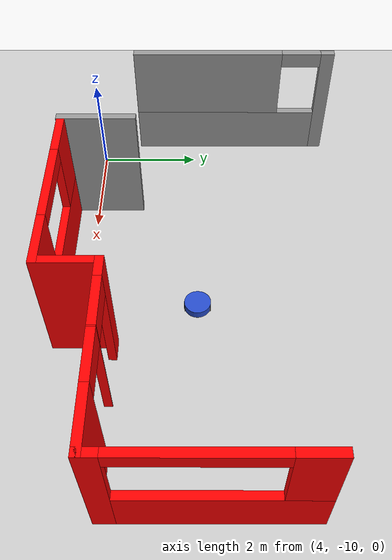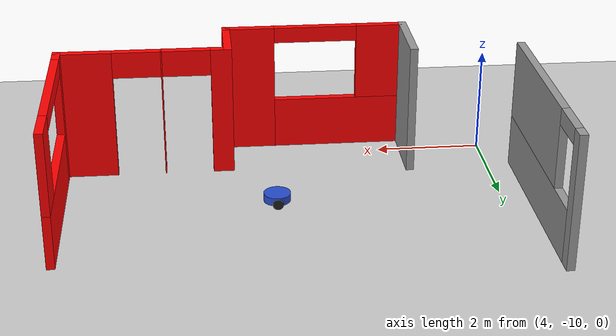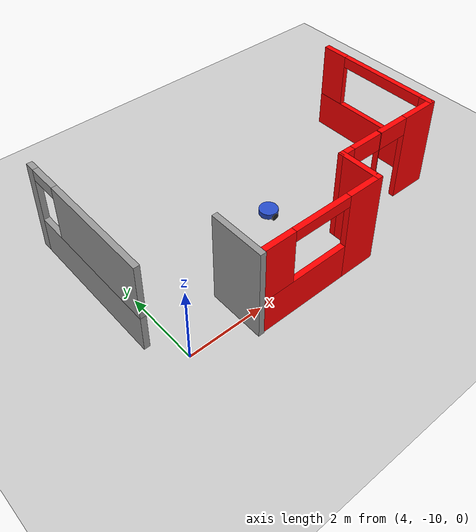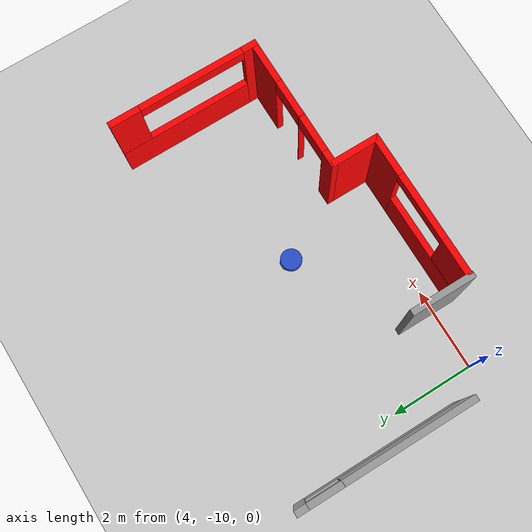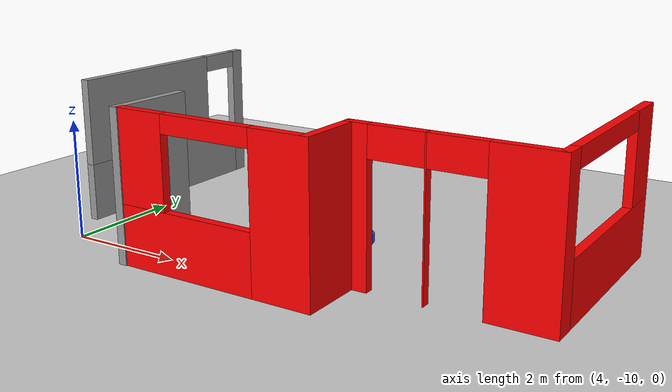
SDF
<sdf version="1.6">
 <world name="default">
  <model name="ground_plane">
   <static>1</static>
   <link name="link">
    <collision name="collision">
     <geometry><plane><normal>0 0 1</normal><size>100 100</size></plane></geometry>
     <surface><friction><ode><mu>100</mu><mu2>50</mu2></ode></friction></surface>
    </collision>
    <visual name="visual">
     <cast_shadows>0</cast_shadows>
     <geometry><plane><normal>0 0 1</normal><size>100 100</size></plane></geometry>
     <material>
      <script><uri>file://media/materials/scripts/gazebo.material</uri><name>Gazebo/Grey</name></script>
     </material>
    </visual>
   </link>
  </model>
  <model name="1floorHouse">
   <link name="Wall_302">
    <pose>-0.789795 -2.54 0 0 0 -1.5708</pose>
    <visual name="Wall_302_Visual_0">
     <pose>-1.93765 0 1.25 0 -0 0</pose>
     <geometry><box><size>0.274706 0.15 2.5</size></box></geometry>
     <material>
      <script><uri>file://media/materials/scripts/gazebo.material</uri><name>Gazebo/Grey</name></script>
      <ambient>1 1 1 1</ambient>
      <diffuse>0.7 0.7 0.7 1</diffuse>
      <specular>0.01 0.01 0.01 1</specular>
      <emissive>0 0 0 1</emissive>
     </material>
    </visual>
    <visual name="Wall_302_Visual_1">
     <pose>0.137353 0 0.5 0 -0 0</pose>
     <geometry><box><size>3.87529 0.15 1</size></box></geometry>
     <material>
      <script><uri>file://media/materials/scripts/gazebo.material</uri><name>Gazebo/Grey</name></script>
      <ambient>1 1 1 1</ambient>
      <diffuse>0.7 0.7 0.7 1</diffuse>
      <specular>0.01 0.01 0.01 1</specular>
      <emissive>0 0 0 1</emissive>
     </material>
    </visual>
    <visual name="Wall_302_Visual_2">
     <pose>0.537353 0 1.75 0 -0 0</pose>
     <geometry><box><size>3.07529 0.15 1.5</size></box></geometry>
     <material>
      <script><uri>file://media/materials/scripts/gazebo.material</uri><name>Gazebo/Grey</name></script>
      <ambient>1 1 1 1</ambient>
      <diffuse>0.7 0.7 0.7 1</diffuse>
      <specular>0.01 0.01 0.01 1</specular>
      <emissive>0 0 0 1</emissive>
     </material>
    </visual>
    <visual name="Wall_302_Visual_3">
     <pose>-1.40029 0 2.35 0 -0 0</pose>
     <geometry><box><size>0.8 0.15 0.3</size></box></geometry>
     <material>
      <script><uri>file://media/materials/scripts/gazebo.material</uri><name>Gazebo/Grey</name></script>
      <ambient>1 1 1 1</ambient>
      <diffuse>0.7 0.7 0.7 1</diffuse>
      <specular>0.01 0.01 0.01 1</specular>
      <emissive>0 0 0 1</emissive>
     </material>
    </visual>
    <collision name="Wall_302_Collision_0">
     <pose>-1.93765 0 1.25 0 -0 0</pose>
     <geometry><box><size>0.274706 0.15 2.5</size></box></geometry>
     <surface>
      <friction>
       <ode><mu>1</mu><mu2>1</mu2><fdir1>0 0 0</fdir1><slip1>0</slip1><slip2>0</slip2></ode>
       <torsional>
        <coefficient>1</coefficient>
        <patch_radius>0</patch_radius>
        <surface_radius>0</surface_radius>
        <use_patch_radius>1</use_patch_radius>
        <ode><slip>0</slip></ode>
       </torsional>
      </friction>
      <bounce><restitution_coefficient>0</restitution_coefficient><threshold>1e+06</threshold></bounce>
      <contact>
       <collide_without_contact>0</collide_without_contact>
       <collide_without_contact_bitmask>1</collide_without_contact_bitmask>
       <collide_bitmask>1</collide_bitmask>
       <ode>
        <soft_cfm>0</soft_cfm>
        <soft_erp>0.2</soft_erp>
        <kp>1e+13</kp>
        <kd>1</kd>
        <max_vel>0.01</max_vel>
        <min_depth>0</min_depth>
       </ode>
       <bullet>
        <split_impulse>1</split_impulse>
        <split_impulse_penetration_threshold>-0.01</split_impulse_penetration_threshold>
        <soft_cfm>0</soft_cfm>
        <soft_erp>0.2</soft_erp>
        <kp>1e+13</kp>
        <kd>1</kd>
       </bullet>
      </contact>
     </surface>
    </collision>
    <collision name="Wall_302_Collision_3">
     <pose>-1.40029 0 2.35 0 -0 0</pose>
     <geometry><box><size>0.8 0.15 0.3</size></box></geometry>
     <surface>
      <friction>
       <ode><mu>1</mu><mu2>1</mu2><fdir1>0 0 0</fdir1><slip1>0</slip1><slip2>0</slip2></ode>
       <torsional>
        <coefficient>1</coefficient>
        <patch_radius>0</patch_radius>
        <surface_radius>0</surface_radius>
        <use_patch_radius>1</use_patch_radius>
        <ode><slip>0</slip></ode>
       </torsional>
      </friction>
      <bounce><restitution_coefficient>0</restitution_coefficient><threshold>1e+06</threshold></bounce>
      <contact>
       <collide_without_contact>0</collide_without_contact>
       <collide_without_contact_bitmask>1</collide_without_contact_bitmask>
       <collide_bitmask>1</collide_bitmask>
       <ode>
        <soft_cfm>0</soft_cfm>
        <soft_erp>0.2</soft_erp>
        <kp>1e+13</kp>
        <kd>1</kd>
        <max_vel>0.01</max_vel>
        <min_depth>0</min_depth>
       </ode>
       <bullet>
        <split_impulse>1</split_impulse>
        <split_impulse_penetration_threshold>-0.01</split_impulse_penetration_threshold>
        <soft_cfm>0</soft_cfm>
        <soft_erp>0.2</soft_erp>
        <kp>1e+13</kp>
        <kd>1</kd>
       </bullet>
      </contact>
     </surface>
    </collision>
    <collision name="Wall_302_Collision_1">
     <pose>0.137353 0 0.5 0 -0 0</pose>
     <geometry><box><size>3.87529 0.15 1</size></box></geometry>
     <surface>
      <friction>
       <ode><mu>1</mu><mu2>1</mu2><fdir1>0 0 0</fdir1><slip1>0</slip1><slip2>0</slip2></ode>
       <torsional>
        <coefficient>1</coefficient>
        <patch_radius>0</patch_radius>
        <surface_radius>0</surface_radius>
        <use_patch_radius>1</use_patch_radius>
        <ode><slip>0</slip></ode>
       </torsional>
      </friction>
      <bounce><restitution_coefficient>0</restitution_coefficient><threshold>1e+06</threshold></bounce>
      <contact>
       <collide_without_contact>0</collide_without_contact>
       <collide_without_contact_bitmask>1</collide_without_contact_bitmask>
       <collide_bitmask>1</collide_bitmask>
       <ode>
        <soft_cfm>0</soft_cfm>
        <soft_erp>0.2</soft_erp>
        <kp>1e+13</kp>
        <kd>1</kd>
        <max_vel>0.01</max_vel>
        <min_depth>0</min_depth>
       </ode>
       <bullet>
        <split_impulse>1</split_impulse>
        <split_impulse_penetration_threshold>-0.01</split_impulse_penetration_threshold>
        <soft_cfm>0</soft_cfm>
        <soft_erp>0.2</soft_erp>
        <kp>1e+13</kp>
        <kd>1</kd>
       </bullet>
      </contact>
     </surface>
    </collision>
    <collision name="Wall_302_Collision_2">
     <pose>0.537353 0 1.75 0 -0 0</pose>
     <geometry><box><size>3.07529 0.15 1.5</size></box></geometry>
     <surface>
      <friction>
       <ode><mu>1</mu><mu2>1</mu2><fdir1>0 0 0</fdir1><slip1>0</slip1><slip2>0</slip2></ode>
       <torsional>
        <coefficient>1</coefficient>
        <patch_radius>0</patch_radius>
        <surface_radius>0</surface_radius>
        <use_patch_radius>1</use_patch_radius>
        <ode><slip>0</slip></ode>
       </torsional>
      </friction>
      <bounce><restitution_coefficient>0</restitution_coefficient><threshold>1e+06</threshold></bounce>
      <contact>
       <collide_without_contact>0</collide_without_contact>
       <collide_without_contact_bitmask>1</collide_without_contact_bitmask>
       <collide_bitmask>1</collide_bitmask>
       <ode>
        <soft_cfm>0</soft_cfm>
        <soft_erp>0.2</soft_erp>
        <kp>1e+13</kp>
        <kd>1</kd>
        <max_vel>0.01</max_vel>
        <min_depth>0</min_depth>
       </ode>
       <bullet>
        <split_impulse>1</split_impulse>
        <split_impulse_penetration_threshold>-0.01</split_impulse_penetration_threshold>
        <soft_cfm>0</soft_cfm>
        <soft_erp>0.2</soft_erp>
        <kp>1e+13</kp>
        <kd>1</kd>
       </bullet>
      </contact>
     </surface>
    </collision>
   </link>
   <link name="Wall_338">
    <pose>7.8602 -3.07643 0 0 -0 1.5708</pose>
    <visual name="Wall_338_Visual_0">
     <pose>-1.61551 0 1.25 0 -0 0</pose>
     <geometry><box><size>0.368981 0.15 2.5</size></box></geometry>
     <material>
      <script><uri>file://media/materials/scripts/gazebo.material</uri><name>Gazebo/Grey</name></script>
      <ambient>1 0 0 1</ambient>
      <diffuse>0.7 0.7 0.7 1</diffuse>
      <specular>0.01 0.01 0.01 1</specular>
      <emissive>0 0 0 1</emissive>
     </material>
    </visual>
    <visual name="Wall_338_Visual_1">
     <pose>0.18449 0 0.5 0 -0 0</pose>
     <geometry><box><size>3.23102 0.15 1</size></box></geometry>
     <material>
      <script><uri>file://media/materials/scripts/gazebo.material</uri><name>Gazebo/Grey</name></script>
      <ambient>1 0 0 1</ambient>
      <diffuse>0.7 0.7 0.7 1</diffuse>
      <specular>0.01 0.01 0.01 1</specular>
      <emissive>0 0 0 1</emissive>
     </material>
    </visual>
    <visual name="Wall_338_Visual_2">
     <pose>1.43449 0 1.75 0 -0 0</pose>
     <geometry><box><size>0.731019 0.15 1.5</size></box></geometry>
     <material>
      <script><uri>file://media/materials/scripts/gazebo.material</uri><name>Gazebo/Grey</name></script>
      <ambient>1 0 0 1</ambient>
      <diffuse>0.7 0.7 0.7 1</diffuse>
      <specular>0.01 0.01 0.01 1</specular>
      <emissive>0 0 0 1</emissive>
     </material>
    </visual>
    <visual name="Wall_338_Visual_3">
     <pose>-0.181019 0 2.35 0 -0 0</pose>
     <geometry><box><size>2.5 0.15 0.3</size></box></geometry>
     <material>
      <script><uri>file://media/materials/scripts/gazebo.material</uri><name>Gazebo/Grey</name></script>
      <ambient>1 0 0 1</ambient>
      <diffuse>0.7 0.7 0.7 1</diffuse>
      <specular>0.01 0.01 0.01 1</specular>
      <emissive>0 0 0 1</emissive>
     </material>
    </visual>
    <collision name="Wall_338_Collision_0">
     <pose>-1.61551 0 1.25 0 -0 0</pose>
     <geometry><box><size>0.368981 0.15 2.5</size></box></geometry>
     <surface>
      <friction>
       <ode><mu>1</mu><mu2>1</mu2><fdir1>0 0 0</fdir1><slip1>0</slip1><slip2>0</slip2></ode>
       <torsional>
        <coefficient>1</coefficient>
        <patch_radius>0</patch_radius>
        <surface_radius>0</surface_radius>
        <use_patch_radius>1</use_patch_radius>
        <ode><slip>0</slip></ode>
       </torsional>
      </friction>
      <bounce><restitution_coefficient>0</restitution_coefficient><threshold>1e+06</threshold></bounce>
      <contact>
       <collide_without_contact>0</collide_without_contact>
       <collide_without_contact_bitmask>1</collide_without_contact_bitmask>
       <collide_bitmask>1</collide_bitmask>
       <ode>
        <soft_cfm>0</soft_cfm>
        <soft_erp>0.2</soft_erp>
        <kp>1e+13</kp>
        <kd>1</kd>
        <max_vel>0.01</max_vel>
        <min_depth>0</min_depth>
       </ode>
       <bullet>
        <split_impulse>1</split_impulse>
        <split_impulse_penetration_threshold>-0.01</split_impulse_penetration_threshold>
        <soft_cfm>0</soft_cfm>
        <soft_erp>0.2</soft_erp>
        <kp>1e+13</kp>
        <kd>1</kd>
       </bullet>
      </contact>
     </surface>
    </collision>
    <collision name="Wall_338_Collision_1">
     <pose>0.18449 0 0.5 0 -0 0</pose>
     <geometry><box><size>3.23102 0.15 1</size></box></geometry>
     <surface>
      <friction>
       <ode><mu>1</mu><mu2>1</mu2><fdir1>0 0 0</fdir1><slip1>0</slip1><slip2>0</slip2></ode>
       <torsional>
        <coefficient>1</coefficient>
        <patch_radius>0</patch_radius>
        <surface_radius>0</surface_radius>
        <use_patch_radius>1</use_patch_radius>
        <ode><slip>0</slip></ode>
       </torsional>
      </friction>
      <bounce><restitution_coefficient>0</restitution_coefficient><threshold>1e+06</threshold></bounce>
      <contact>
       <collide_without_contact>0</collide_without_contact>
       <collide_without_contact_bitmask>1</collide_without_contact_bitmask>
       <collide_bitmask>1</collide_bitmask>
       <ode>
        <soft_cfm>0</soft_cfm>
        <soft_erp>0.2</soft_erp>
        <kp>1e+13</kp>
        <kd>1</kd>
        <max_vel>0.01</max_vel>
        <min_depth>0</min_depth>
       </ode>
       <bullet>
        <split_impulse>1</split_impulse>
        <split_impulse_penetration_threshold>-0.01</split_impulse_penetration_threshold>
        <soft_cfm>0</soft_cfm>
        <soft_erp>0.2</soft_erp>
        <kp>1e+13</kp>
        <kd>1</kd>
       </bullet>
      </contact>
     </surface>
    </collision>
    <collision name="Wall_338_Collision_2">
     <pose>1.43449 0 1.75 0 -0 0</pose>
     <geometry><box><size>0.731019 0.15 1.5</size></box></geometry>
     <surface>
      <friction>
       <ode><mu>1</mu><mu2>1</mu2><fdir1>0 0 0</fdir1><slip1>0</slip1><slip2>0</slip2></ode>
       <torsional>
        <coefficient>1</coefficient>
        <patch_radius>0</patch_radius>
        <surface_radius>0</surface_radius>
        <use_patch_radius>1</use_patch_radius>
        <ode><slip>0</slip></ode>
       </torsional>
      </friction>
      <bounce><restitution_coefficient>0</restitution_coefficient><threshold>1e+06</threshold></bounce>
      <contact>
       <collide_without_contact>0</collide_without_contact>
       <collide_without_contact_bitmask>1</collide_without_contact_bitmask>
       <collide_bitmask>1</collide_bitmask>
       <ode>
        <soft_cfm>0</soft_cfm>
        <soft_erp>0.2</soft_erp>
        <kp>1e+13</kp>
        <kd>1</kd>
        <max_vel>0.01</max_vel>
        <min_depth>0</min_depth>
       </ode>
       <bullet>
        <split_impulse>1</split_impulse>
        <split_impulse_penetration_threshold>-0.01</split_impulse_penetration_threshold>
        <soft_cfm>0</soft_cfm>
        <soft_erp>0.2</soft_erp>
        <kp>1e+13</kp>
        <kd>1</kd>
       </bullet>
      </contact>
     </surface>
    </collision>
    <collision name="Wall_338_Collision_3">
     <pose>-0.181019 0 2.35 0 -0 0</pose>
     <geometry><box><size>2.5 0.15 0.3</size></box></geometry>
     <surface>
      <friction>
       <ode><mu>1</mu><mu2>1</mu2><fdir1>0 0 0</fdir1><slip1>0</slip1><slip2>0</slip2></ode>
       <torsional>
        <coefficient>1</coefficient>
        <patch_radius>0</patch_radius>
        <surface_radius>0</surface_radius>
        <use_patch_radius>1</use_patch_radius>
        <ode><slip>0</slip></ode>
       </torsional>
      </friction>
      <bounce><restitution_coefficient>0</restitution_coefficient><threshold>1e+06</threshold></bounce>
      <contact>
       <collide_without_contact>0</collide_without_contact>
       <collide_without_contact_bitmask>1</collide_without_contact_bitmask>
       <collide_bitmask>1</collide_bitmask>
       <ode>
        <soft_cfm>0</soft_cfm>
        <soft_erp>0.2</soft_erp>
        <kp>1e+13</kp>
        <kd>1</kd>
        <max_vel>0.01</max_vel>
        <min_depth>0</min_depth>
       </ode>
       <bullet>
        <split_impulse>1</split_impulse>
        <split_impulse_penetration_threshold>-0.01</split_impulse_penetration_threshold>
        <soft_cfm>0</soft_cfm>
        <soft_erp>0.2</soft_erp>
        <kp>1e+13</kp>
        <kd>1</kd>
       </bullet>
      </contact>
     </surface>
    </collision>
   </link>
   <link name="Wall_339">
    <pose>6.2852 -4.80143 0 0 -0 3.14159</pose>
    <visual name="Wall_339_Visual_0">
     <pose>-1.11026 0 1.25 0 -0 0</pose>
     <geometry><box><size>1.07948 0.15 2.5</size></box></geometry>
     <material>
      <script><uri>file://media/materials/scripts/gazebo.material</uri><name>Gazebo/Grey</name></script>
      <ambient>1 0 0 1</ambient>
      <diffuse>0.7 0.7 0.7 1</diffuse>
      <specular>0.01 0.01 0.01 1</specular>
      <emissive>0 0 0 1</emissive>
     </material>
    </visual>
    <visual name="Wall_339_Visual_1">
     <pose>0.341197 0 1.25 0 -0 0</pose>
     <geometry><box><size>0.023442 0.15 2.5</size></box></geometry>
     <material>
      <script><uri>file://media/materials/scripts/gazebo.material</uri><name>Gazebo/Grey</name></script>
      <ambient>1 0 0 1</ambient>
      <diffuse>0.7 0.7 0.7 1</diffuse>
      <specular>0.01 0.01 0.01 1</specular>
      <emissive>0 0 0 1</emissive>
     </material>
    </visual>
    <visual name="Wall_339_Visual_3">
     <pose>-0.120524 0 2.25 0 -0 0</pose>
     <geometry><box><size>0.9 0.15 0.5</size></box></geometry>
     <material>
      <script><uri>file://media/materials/scripts/gazebo.material</uri><name>Gazebo/Grey</name></script>
      <ambient>1 0 0 1</ambient>
      <diffuse>0.7 0.7 0.7 1</diffuse>
      <specular>0.01 0.01 0.01 1</specular>
      <emissive>0 0 0 1</emissive>
     </material>
    </visual>
    <visual name="Wall_339_Visual_2">
     <pose>1.45146 0 1.25 0 -0 0</pose>
     <geometry><box><size>0.397083 0.15 2.5</size></box></geometry>
     <material>
      <script><uri>file://media/materials/scripts/gazebo.material</uri><name>Gazebo/Grey</name></script>
      <ambient>1 0 0 1</ambient>
      <diffuse>0.7 0.7 0.7 1</diffuse>
      <specular>0.01 0.01 0.01 1</specular>
      <emissive>0 0 0 1</emissive>
     </material>
    </visual>
    <visual name="Wall_339_Visual_4">
     <pose>0.802917 0 2.25 0 -0 0</pose>
     <geometry><box><size>0.9 0.15 0.5</size></box></geometry>
     <material>
      <script><uri>file://media/materials/scripts/gazebo.material</uri><name>Gazebo/Grey</name></script>
      <ambient>1 0 0 1</ambient>
      <diffuse>0.7 0.7 0.7 1</diffuse>
      <specular>0.01 0.01 0.01 1</specular>
      <emissive>0 0 0 1</emissive>
     </material>
    </visual>
    <collision name="Wall_339_Collision_0">
     <pose>-1.11026 0 1.25 0 -0 0</pose>
     <geometry><box><size>1.07948 0.15 2.5</size></box></geometry>
     <surface>
      <friction>
       <ode><mu>1</mu><mu2>1</mu2><fdir1>0 0 0</fdir1><slip1>0</slip1><slip2>0</slip2></ode>
       <torsional>
        <coefficient>1</coefficient>
        <patch_radius>0</patch_radius>
        <surface_radius>0</surface_radius>
        <use_patch_radius>1</use_patch_radius>
        <ode><slip>0</slip></ode>
       </torsional>
      </friction>
      <bounce><restitution_coefficient>0</restitution_coefficient><threshold>1e+06</threshold></bounce>
      <contact>
       <collide_without_contact>0</collide_without_contact>
       <collide_without_contact_bitmask>1</collide_without_contact_bitmask>
       <collide_bitmask>1</collide_bitmask>
       <ode>
        <soft_cfm>0</soft_cfm>
        <soft_erp>0.2</soft_erp>
        <kp>1e+13</kp>
        <kd>1</kd>
        <max_vel>0.01</max_vel>
        <min_depth>0</min_depth>
       </ode>
       <bullet>
        <split_impulse>1</split_impulse>
        <split_impulse_penetration_threshold>-0.01</split_impulse_penetration_threshold>
        <soft_cfm>0</soft_cfm>
        <soft_erp>0.2</soft_erp>
        <kp>1e+13</kp>
        <kd>1</kd>
       </bullet>
      </contact>
     </surface>
    </collision>
    <collision name="Wall_339_Collision_4">
     <pose>0.802917 0 2.25 0 -0 0</pose>
     <geometry><box><size>0.9 0.15 0.5</size></box></geometry>
     <surface>
      <friction>
       <ode><mu>1</mu><mu2>1</mu2><fdir1>0 0 0</fdir1><slip1>0</slip1><slip2>0</slip2></ode>
       <torsional>
        <coefficient>1</coefficient>
        <patch_radius>0</patch_radius>
        <surface_radius>0</surface_radius>
        <use_patch_radius>1</use_patch_radius>
        <ode><slip>0</slip></ode>
       </torsional>
      </friction>
      <bounce><restitution_coefficient>0</restitution_coefficient><threshold>1e+06</threshold></bounce>
      <contact>
       <collide_without_contact>0</collide_without_contact>
       <collide_without_contact_bitmask>1</collide_without_contact_bitmask>
       <collide_bitmask>1</collide_bitmask>
       <ode>
        <soft_cfm>0</soft_cfm>
        <soft_erp>0.2</soft_erp>
        <kp>1e+13</kp>
        <kd>1</kd>
        <max_vel>0.01</max_vel>
        <min_depth>0</min_depth>
       </ode>
       <bullet>
        <split_impulse>1</split_impulse>
        <split_impulse_penetration_threshold>-0.01</split_impulse_penetration_threshold>
        <soft_cfm>0</soft_cfm>
        <soft_erp>0.2</soft_erp>
        <kp>1e+13</kp>
        <kd>1</kd>
       </bullet>
      </contact>
     </surface>
    </collision>
    <collision name="Wall_339_Collision_1">
     <pose>0.341197 0 1.25 0 -0 0</pose>
     <geometry><box><size>0.023442 0.15 2.5</size></box></geometry>
     <surface>
      <friction>
       <ode><mu>1</mu><mu2>1</mu2><fdir1>0 0 0</fdir1><slip1>0</slip1><slip2>0</slip2></ode>
       <torsional>
        <coefficient>1</coefficient>
        <patch_radius>0</patch_radius>
        <surface_radius>0</surface_radius>
        <use_patch_radius>1</use_patch_radius>
        <ode><slip>0</slip></ode>
       </torsional>
      </friction>
      <bounce><restitution_coefficient>0</restitution_coefficient><threshold>1e+06</threshold></bounce>
      <contact>
       <collide_without_contact>0</collide_without_contact>
       <collide_without_contact_bitmask>1</collide_without_contact_bitmask>
       <collide_bitmask>1</collide_bitmask>
       <ode>
        <soft_cfm>0</soft_cfm>
        <soft_erp>0.2</soft_erp>
        <kp>1e+13</kp>
        <kd>1</kd>
        <max_vel>0.01</max_vel>
        <min_depth>0</min_depth>
       </ode>
       <bullet>
        <split_impulse>1</split_impulse>
        <split_impulse_penetration_threshold>-0.01</split_impulse_penetration_threshold>
        <soft_cfm>0</soft_cfm>
        <soft_erp>0.2</soft_erp>
        <kp>1e+13</kp>
        <kd>1</kd>
       </bullet>
      </contact>
     </surface>
    </collision>
    <collision name="Wall_339_Collision_2">
     <pose>1.45146 0 1.25 0 -0 0</pose>
     <geometry><box><size>0.397083 0.15 2.5</size></box></geometry>
     <surface>
      <friction>
       <ode><mu>1</mu><mu2>1</mu2><fdir1>0 0 0</fdir1><slip1>0</slip1><slip2>0</slip2></ode>
       <torsional>
        <coefficient>1</coefficient>
        <patch_radius>0</patch_radius>
        <surface_radius>0</surface_radius>
        <use_patch_radius>1</use_patch_radius>
        <ode><slip>0</slip></ode>
       </torsional>
      </friction>
      <bounce><restitution_coefficient>0</restitution_coefficient><threshold>1e+06</threshold></bounce>
      <contact>
       <collide_without_contact>0</collide_without_contact>
       <collide_without_contact_bitmask>1</collide_without_contact_bitmask>
       <collide_bitmask>1</collide_bitmask>
       <ode>
        <soft_cfm>0</soft_cfm>
        <soft_erp>0.2</soft_erp>
        <kp>1e+13</kp>
        <kd>1</kd>
        <max_vel>0.01</max_vel>
        <min_depth>0</min_depth>
       </ode>
       <bullet>
        <split_impulse>1</split_impulse>
        <split_impulse_penetration_threshold>-0.01</split_impulse_penetration_threshold>
        <soft_cfm>0</soft_cfm>
        <soft_erp>0.2</soft_erp>
        <kp>1e+13</kp>
        <kd>1</kd>
       </bullet>
      </contact>
     </surface>
    </collision>
    <collision name="Wall_339_Collision_3">
     <pose>-0.120524 0 2.25 0 -0 0</pose>
     <geometry><box><size>0.9 0.15 0.5</size></box></geometry>
     <surface>
      <friction>
       <ode><mu>1</mu><mu2>1</mu2><fdir1>0 0 0</fdir1><slip1>0</slip1><slip2>0</slip2></ode>
       <torsional>
        <coefficient>1</coefficient>
        <patch_radius>0</patch_radius>
        <surface_radius>0</surface_radius>
        <use_patch_radius>1</use_patch_radius>
        <ode><slip>0</slip></ode>
       </torsional>
      </friction>
      <bounce><restitution_coefficient>0</restitution_coefficient><threshold>1e+06</threshold></bounce>
      <contact>
       <collide_without_contact>0</collide_without_contact>
       <collide_without_contact_bitmask>1</collide_without_contact_bitmask>
       <collide_bitmask>1</collide_bitmask>
       <ode>
        <soft_cfm>0</soft_cfm>
        <soft_erp>0.2</soft_erp>
        <kp>1e+13</kp>
        <kd>1</kd>
        <max_vel>0.01</max_vel>
        <min_depth>0</min_depth>
       </ode>
       <bullet>
        <split_impulse>1</split_impulse>
        <split_impulse_penetration_threshold>-0.01</split_impulse_penetration_threshold>
        <soft_cfm>0</soft_cfm>
        <soft_erp>0.2</soft_erp>
        <kp>1e+13</kp>
        <kd>1</kd>
       </bullet>
      </contact>
     </surface>
    </collision>
   </link>
   <link name="Wall_340">
    <pose>4.7102 -5.32643 0 0 0 -1.5708</pose>
    <visual name="Wall_340_Visual">
     <pose>0 0 1.25 0 -0 0</pose>
     <geometry><box><size>1.2 0.15 2.5</size></box></geometry>
     <material>
      <script><uri>file://media/materials/scripts/gazebo.material</uri><name>Gazebo/Grey</name></script>
      <ambient>1 0 0 1</ambient>
      <diffuse>0.7 0.7 0.7 1</diffuse>
      <specular>0.01 0.01 0.01 1</specular>
      <emissive>0 0 0 1</emissive>
     </material>
    </visual>
    <collision name="Wall_340_Collision">
     <pose>0 0 1.25 0 -0 0</pose>
     <geometry><box><size>1.2 0.15 2.5</size></box></geometry>
     <surface>
      <friction>
       <ode><mu>1</mu><mu2>1</mu2><fdir1>0 0 0</fdir1><slip1>0</slip1><slip2>0</slip2></ode>
       <torsional>
        <coefficient>1</coefficient>
        <patch_radius>0</patch_radius>
        <surface_radius>0</surface_radius>
        <use_patch_radius>1</use_patch_radius>
        <ode><slip>0</slip></ode>
       </torsional>
      </friction>
      <bounce><restitution_coefficient>0</restitution_coefficient><threshold>1e+06</threshold></bounce>
      <contact>
       <collide_without_contact>0</collide_without_contact>
       <collide_without_contact_bitmask>1</collide_without_contact_bitmask>
       <collide_bitmask>1</collide_bitmask>
       <ode>
        <soft_cfm>0</soft_cfm>
        <soft_erp>0.2</soft_erp>
        <kp>1e+13</kp>
        <kd>1</kd>
        <max_vel>0.01</max_vel>
        <min_depth>0</min_depth>
       </ode>
       <bullet>
        <split_impulse>1</split_impulse>
        <split_impulse_penetration_threshold>-0.01</split_impulse_penetration_threshold>
        <soft_cfm>0</soft_cfm>
        <soft_erp>0.2</soft_erp>
        <kp>1e+13</kp>
        <kd>1</kd>
       </bullet>
      </contact>
     </surface>
    </collision>
   </link>
   <link name="Wall_341">
    <pose>3.0352 -5.85143 0 0 -0 3.14159</pose>
    <visual name="Wall_341_Visual_1">
     <pose>0.505727 0 0.5 0 -0 0</pose>
     <geometry><box><size>2.48855 0.15 1</size></box></geometry>
     <material>
      <script><uri>file://media/materials/scripts/gazebo.material</uri><name>Gazebo/Grey</name></script>
      <ambient>1 0 0 1</ambient>
      <diffuse>0.7 0.7 0.7 1</diffuse>
      <specular>0.01 0.01 0.01 1</specular>
      <emissive>0 0 0 1</emissive>
     </material>
    </visual>
    <visual name="Wall_341_Visual_0">
     <pose>-1.24427 0 1.25 0 -0 0</pose>
     <geometry><box><size>1.01145 0.15 2.5</size></box></geometry>
     <material>
      <script><uri>file://media/materials/scripts/gazebo.material</uri><name>Gazebo/Grey</name></script>
      <ambient>1 0 0 1</ambient>
      <diffuse>0.7 0.7 0.7 1</diffuse>
      <specular>0.01 0.01 0.01 1</specular>
      <emissive>0 0 0 1</emissive>
     </material>
    </visual>
    <visual name="Wall_341_Visual_2">
     <pose>1.30573 0 1.75 0 -0 0</pose>
     <geometry><box><size>0.888547 0.15 1.5</size></box></geometry>
     <material>
      <script><uri>file://media/materials/scripts/gazebo.material</uri><name>Gazebo/Grey</name></script>
      <ambient>1 0 0 1</ambient>
      <diffuse>0.7 0.7 0.7 1</diffuse>
      <specular>0.01 0.01 0.01 1</specular>
      <emissive>0 0 0 1</emissive>
     </material>
    </visual>
    <visual name="Wall_341_Visual_3">
     <pose>0.061453 0 2.35 0 -0 0</pose>
     <geometry><box><size>1.6 0.15 0.3</size></box></geometry>
     <material>
      <script><uri>file://media/materials/scripts/gazebo.material</uri><name>Gazebo/Grey</name></script>
      <ambient>1 0 0 1</ambient>
      <diffuse>0.7 0.7 0.7 1</diffuse>
      <specular>0.01 0.01 0.01 1</specular>
      <emissive>0 0 0 1</emissive>
     </material>
    </visual>
    <collision name="Wall_341_Collision_0">
     <pose>-1.24427 0 1.25 0 -0 0</pose>
     <geometry><box><size>1.01145 0.15 2.5</size></box></geometry>
     <surface>
      <friction>
       <ode><mu>1</mu><mu2>1</mu2><fdir1>0 0 0</fdir1><slip1>0</slip1><slip2>0</slip2></ode>
       <torsional>
        <coefficient>1</coefficient>
        <patch_radius>0</patch_radius>
        <surface_radius>0</surface_radius>
        <use_patch_radius>1</use_patch_radius>
        <ode><slip>0</slip></ode>
       </torsional>
      </friction>
      <bounce><restitution_coefficient>0</restitution_coefficient><threshold>1e+06</threshold></bounce>
      <contact>
       <collide_without_contact>0</collide_without_contact>
       <collide_without_contact_bitmask>1</collide_without_contact_bitmask>
       <collide_bitmask>1</collide_bitmask>
       <ode>
        <soft_cfm>0</soft_cfm>
        <soft_erp>0.2</soft_erp>
        <kp>1e+13</kp>
        <kd>1</kd>
        <max_vel>0.01</max_vel>
        <min_depth>0</min_depth>
       </ode>
       <bullet>
        <split_impulse>1</split_impulse>
        <split_impulse_penetration_threshold>-0.01</split_impulse_penetration_threshold>
        <soft_cfm>0</soft_cfm>
        <soft_erp>0.2</soft_erp>
        <kp>1e+13</kp>
        <kd>1</kd>
       </bullet>
      </contact>
     </surface>
    </collision>
    <collision name="Wall_341_Collision_1">
     <pose>0.505727 0 0.5 0 -0 0</pose>
     <geometry><box><size>2.48855 0.15 1</size></box></geometry>
     <surface>
      <friction>
       <ode><mu>1</mu><mu2>1</mu2><fdir1>0 0 0</fdir1><slip1>0</slip1><slip2>0</slip2></ode>
       <torsional>
        <coefficient>1</coefficient>
        <patch_radius>0</patch_radius>
        <surface_radius>0</surface_radius>
        <use_patch_radius>1</use_patch_radius>
        <ode><slip>0</slip></ode>
       </torsional>
      </friction>
      <bounce><restitution_coefficient>0</restitution_coefficient><threshold>1e+06</threshold></bounce>
      <contact>
       <collide_without_contact>0</collide_without_contact>
       <collide_without_contact_bitmask>1</collide_without_contact_bitmask>
       <collide_bitmask>1</collide_bitmask>
       <ode>
        <soft_cfm>0</soft_cfm>
        <soft_erp>0.2</soft_erp>
        <kp>1e+13</kp>
        <kd>1</kd>
        <max_vel>0.01</max_vel>
        <min_depth>0</min_depth>
       </ode>
       <bullet>
        <split_impulse>1</split_impulse>
        <split_impulse_penetration_threshold>-0.01</split_impulse_penetration_threshold>
        <soft_cfm>0</soft_cfm>
        <soft_erp>0.2</soft_erp>
        <kp>1e+13</kp>
        <kd>1</kd>
       </bullet>
      </contact>
     </surface>
    </collision>
    <collision name="Wall_341_Collision_2">
     <pose>1.30573 0 1.75 0 -0 0</pose>
     <geometry><box><size>0.888547 0.15 1.5</size></box></geometry>
     <surface>
      <friction>
       <ode><mu>1</mu><mu2>1</mu2><fdir1>0 0 0</fdir1><slip1>0</slip1><slip2>0</slip2></ode>
       <torsional>
        <coefficient>1</coefficient>
        <patch_radius>0</patch_radius>
        <surface_radius>0</surface_radius>
        <use_patch_radius>1</use_patch_radius>
        <ode><slip>0</slip></ode>
       </torsional>
      </friction>
      <bounce><restitution_coefficient>0</restitution_coefficient><threshold>1e+06</threshold></bounce>
      <contact>
       <collide_without_contact>0</collide_without_contact>
       <collide_without_contact_bitmask>1</collide_without_contact_bitmask>
       <collide_bitmask>1</collide_bitmask>
       <ode>
        <soft_cfm>0</soft_cfm>
        <soft_erp>0.2</soft_erp>
        <kp>1e+13</kp>
        <kd>1</kd>
        <max_vel>0.01</max_vel>
        <min_depth>0</min_depth>
       </ode>
       <bullet>
        <split_impulse>1</split_impulse>
        <split_impulse_penetration_threshold>-0.01</split_impulse_penetration_threshold>
        <soft_cfm>0</soft_cfm>
        <soft_erp>0.2</soft_erp>
        <kp>1e+13</kp>
        <kd>1</kd>
       </bullet>
      </contact>
     </surface>
    </collision>
    <collision name="Wall_341_Collision_3">
     <pose>0.061453 0 2.35 0 -0 0</pose>
     <geometry><box><size>1.6 0.15 0.3</size></box></geometry>
     <surface>
      <friction>
       <ode><mu>1</mu><mu2>1</mu2><fdir1>0 0 0</fdir1><slip1>0</slip1><slip2>0</slip2></ode>
       <torsional>
        <coefficient>1</coefficient>
        <patch_radius>0</patch_radius>
        <surface_radius>0</surface_radius>
        <use_patch_radius>1</use_patch_radius>
        <ode><slip>0</slip></ode>
       </torsional>
      </friction>
      <bounce><restitution_coefficient>0</restitution_coefficient><threshold>1e+06</threshold></bounce>
      <contact>
       <collide_without_contact>0</collide_without_contact>
       <collide_without_contact_bitmask>1</collide_without_contact_bitmask>
       <collide_bitmask>1</collide_bitmask>
       <ode>
        <soft_cfm>0</soft_cfm>
        <soft_erp>0.2</soft_erp>
        <kp>1e+13</kp>
        <kd>1</kd>
        <max_vel>0.01</max_vel>
        <min_depth>0</min_depth>
       </ode>
       <bullet>
        <split_impulse>1</split_impulse>
        <split_impulse_penetration_threshold>-0.01</split_impulse_penetration_threshold>
        <soft_cfm>0</soft_cfm>
        <soft_erp>0.2</soft_erp>
        <kp>1e+13</kp>
        <kd>1</kd>
       </bullet>
      </contact>
     </surface>
    </collision>
   </link>
   <link name="Wall_342">
    <pose>1.26021 -5.195 0 0 0 -1.5708</pose>
    <visual name="Wall_342_Visual">
     <pose>0 0 1.25 0 -0 0</pose>
     <geometry><box><size>1.5 0.15 2.5</size></box></geometry>
     <material>
      <script><uri>file://media/materials/scripts/gazebo.material</uri><name>Gazebo/Grey</name></script>
      <ambient>1 1 1 1</ambient>
      <diffuse>0.7 0.7 0.7 1</diffuse>
      <specular>0.01 0.01 0.01 1</specular>
      <emissive>0 0 0 1</emissive>
     </material>
    </visual>
    <collision name="Wall_342_Collision">
     <pose>0 0 1.25 0 -0 0</pose>
     <geometry><box><size>1.5 0.15 2.5</size></box></geometry>
     <surface>
      <friction>
       <ode><mu>1</mu><mu2>1</mu2><fdir1>0 0 0</fdir1><slip1>0</slip1><slip2>0</slip2></ode>
       <torsional>
        <coefficient>1</coefficient>
        <patch_radius>0</patch_radius>
        <surface_radius>0</surface_radius>
        <use_patch_radius>1</use_patch_radius>
        <ode><slip>0</slip></ode>
       </torsional>
      </friction>
      <bounce><restitution_coefficient>0</restitution_coefficient><threshold>1e+06</threshold></bounce>
      <contact>
       <collide_without_contact>0</collide_without_contact>
       <collide_without_contact_bitmask>1</collide_without_contact_bitmask>
       <collide_bitmask>1</collide_bitmask>
       <ode>
        <soft_cfm>0</soft_cfm>
        <soft_erp>0.2</soft_erp>
        <kp>1e+13</kp>
        <kd>1</kd>
        <max_vel>0.01</max_vel>
        <min_depth>0</min_depth>
       </ode>
       <bullet>
        <split_impulse>1</split_impulse>
        <split_impulse_penetration_threshold>-0.01</split_impulse_penetration_threshold>
        <soft_cfm>0</soft_cfm>
        <soft_erp>0.2</soft_erp>
        <kp>1e+13</kp>
        <kd>1</kd>
       </bullet>
      </contact>
     </surface>
    </collision>
   </link>
   <static>1</static>
   <pose>4.2533 -4.6154 0 0 -0 0</pose>
  </model>
  <model name="Tartufino">
   <link name="link_0">
    <pose>0 -0 0.04 0 -0 0</pose>
    <inertial>
     <mass>1</mass>
     <inertia><ixx>0.145833</ixx><ixy>0</ixy><ixz>0</ixz><iyy>0.145833</iyy><iyz>0</iyz><izz>0.125</izz></inertia>
    </inertial>
    <visual name="visual">
     <geometry><cylinder><radius>0.25</radius><length>0.15</length></cylinder></geometry>
     <material>
      <lighting>1</lighting>
      <script><uri>file://media/materials/scripts/gazebo.material</uri><name>Gazebo/Blue</name></script>
      <ambient>0.13 0.44 0.7 1</ambient>
      <diffuse>0 0 0 1</diffuse>
      <specular>0.1 0.1 0.1 1</specular>
      <emissive>0 0 0 1</emissive>
      <shader type="vertex"><normal_map>__default__</normal_map></shader>
     </material>
    </visual>
    <collision name="collision">
     <geometry><cylinder><radius>0.25</radius><length>0.15</length></cylinder></geometry>
     <surface>
      <friction>
       <ode><mu>1</mu><mu2>1</mu2><fdir1>0 0 0</fdir1><slip1>0</slip1><slip2>0</slip2></ode>
       <torsional>
        <coefficient>1</coefficient>
        <patch_radius>0</patch_radius>
        <surface_radius>0</surface_radius>
        <use_patch_radius>1</use_patch_radius>
        <ode><slip>0</slip></ode>
       </torsional>
      </friction>
      <bounce><restitution_coefficient>0</restitution_coefficient><threshold>1e+06</threshold></bounce>
      <contact>
       <collide_without_contact>0</collide_without_contact>
       <collide_without_contact_bitmask>1</collide_without_contact_bitmask>
       <collide_bitmask>1</collide_bitmask>
       <ode>
        <soft_cfm>0</soft_cfm>
        <soft_erp>0.2</soft_erp>
        <kp>1e+13</kp>
        <kd>1</kd>
        <max_vel>0.01</max_vel>
        <min_depth>0</min_depth>
       </ode>
       <bullet>
        <split_impulse>1</split_impulse>
        <split_impulse_penetration_threshold>-0.01</split_impulse_penetration_threshold>
        <soft_cfm>0</soft_cfm>
        <soft_erp>0.2</soft_erp>
        <kp>1e+13</kp>
        <kd>1</kd>
       </bullet>
      </contact>
     </surface>
    </collision>
   </link>
   <link name="link_1">
    <pose>0 0.2 -0.01 0 -0 0</pose>
    <inertial>
     <mass>1</mass>
     <inertia><ixx>0.145833</ixx><ixy>0</ixy><ixz>0</ixz><iyy>0.145833</iyy><iyz>0</iyz><izz>0.125</izz></inertia>
    </inertial>
    <visual name="visual">
     <pose>0 0 0 1.5708 -0 0</pose>
     <geometry><cylinder><radius>0.1</radius><length>0.1</length></cylinder></geometry>
     <material>
      <lighting>1</lighting>
      <script><uri>file://media/materials/scripts/gazebo.material</uri><name>Gazebo/Black</name></script>
      <ambient>0 0 0 1</ambient>
      <diffuse>0 0 0 1</diffuse>
      <specular>0.1 0.1 0.1 1</specular>
      <emissive>0 0 0 1</emissive>
      <shader type="vertex"><normal_map>__default__</normal_map></shader>
     </material>
    </visual>
    <collision name="collision">
     <pose>0 0 0 1.5708 -0 0</pose>
     <geometry><cylinder><radius>0.1</radius><length>0.1</length></cylinder></geometry>
     <surface>
      <friction>
       <ode><mu>1</mu><mu2>1</mu2><fdir1>0 0 0</fdir1><slip1>0</slip1><slip2>0</slip2></ode>
       <torsional>
        <coefficient>1</coefficient>
        <patch_radius>0</patch_radius>
        <surface_radius>0</surface_radius>
        <use_patch_radius>1</use_patch_radius>
        <ode><slip>0</slip></ode>
       </torsional>
      </friction>
      <bounce><restitution_coefficient>0</restitution_coefficient><threshold>1e+06</threshold></bounce>
      <contact>
       <collide_without_contact>0</collide_without_contact>
       <collide_without_contact_bitmask>1</collide_without_contact_bitmask>
       <collide_bitmask>1</collide_bitmask>
       <ode>
        <soft_cfm>0</soft_cfm>
        <soft_erp>0.2</soft_erp>
        <kp>1e+13</kp>
        <kd>1</kd>
        <max_vel>0.01</max_vel>
        <min_depth>0</min_depth>
       </ode>
       <bullet>
        <split_impulse>1</split_impulse>
        <split_impulse_penetration_threshold>-0.01</split_impulse_penetration_threshold>
        <soft_cfm>0</soft_cfm>
        <soft_erp>0.2</soft_erp>
        <kp>1e+13</kp>
        <kd>1</kd>
       </bullet>
      </contact>
     </surface>
    </collision>
   </link>
   <link name="link_1_clone">
    <pose>-0 -0.2 -0.01 0 -0 0</pose>
    <inertial>
     <mass>1</mass>
     <inertia><ixx>0.145833</ixx><ixy>0</ixy><ixz>0</ixz><iyy>0.145833</iyy><iyz>0</iyz><izz>0.125</izz></inertia>
    </inertial>
    <visual name="visual">
     <pose>0 0 0 1.5708 -0 0</pose>
     <geometry><cylinder><radius>0.1</radius><length>0.1</length></cylinder></geometry>
     <material>
      <lighting>1</lighting>
      <script><uri>file://media/materials/scripts/gazebo.material</uri><name>Gazebo/Black</name></script>
      <ambient>0 0 0 1</ambient>
      <diffuse>0 0 0 1</diffuse>
      <specular>0.1 0.1 0.1 1</specular>
      <emissive>0 0 0 1</emissive>
      <shader type="vertex"><normal_map>__default__</normal_map></shader>
     </material>
    </visual>
    <collision name="collision">
     <pose>0 0 0 1.5708 -0 0</pose>
     <geometry><cylinder><radius>0.1</radius><length>0.1</length></cylinder></geometry>
     <surface>
      <friction>
       <ode><mu>1</mu><mu2>1</mu2><fdir1>0 0 0</fdir1><slip1>0</slip1><slip2>0</slip2></ode>
       <torsional>
        <coefficient>1</coefficient>
        <patch_radius>0</patch_radius>
        <surface_radius>0</surface_radius>
        <use_patch_radius>1</use_patch_radius>
        <ode><slip>0</slip></ode>
       </torsional>
      </friction>
      <bounce><restitution_coefficient>0</restitution_coefficient><threshold>1e+06</threshold></bounce>
      <contact>
       <collide_without_contact>0</collide_without_contact>
       <collide_without_contact_bitmask>1</collide_without_contact_bitmask>
       <collide_bitmask>1</collide_bitmask>
       <ode>
        <soft_cfm>0</soft_cfm>
        <soft_erp>0.2</soft_erp>
        <kp>1e+13</kp>
        <kd>1</kd>
        <max_vel>0.01</max_vel>
        <min_depth>0</min_depth>
       </ode>
       <bullet>
        <split_impulse>1</split_impulse>
        <split_impulse_penetration_threshold>-0.01</split_impulse_penetration_threshold>
        <soft_cfm>0</soft_cfm>
        <soft_erp>0.2</soft_erp>
        <kp>1e+13</kp>
        <kd>1</kd>
       </bullet>
      </contact>
     </surface>
    </collision>
   </link>
   <link name="link_2">
    <pose>-0.15 0 -0.01 0 -0 0</pose>
    <inertial>
     <mass>1</mass>
     <inertia><ixx>0.1</ixx><ixy>0</ixy><ixz>0</ixz><iyy>0.1</iyy><iyz>0</iyz><izz>0.1</izz></inertia>
    </inertial>
    <visual name="visual">
     <geometry><sphere><radius>0.1</radius></sphere></geometry>
     <material>
      <lighting>1</lighting>
      <script><uri>file://media/materials/scripts/gazebo.material</uri><name>Gazebo/Grey</name></script>
      <ambient>0.3 0.3 0.3 1</ambient>
      <diffuse>0.7 0.7 0.7 1</diffuse>
      <specular>0.01 0.01 0.01 1</specular>
      <emissive>0 0 0 1</emissive>
      <shader type="vertex"><normal_map>__default__</normal_map></shader>
     </material>
    </visual>
    <collision name="collision">
     <geometry><sphere><radius>0.1</radius></sphere></geometry>
     <surface>
      <friction>
       <ode><mu>0</mu><mu2>0</mu2><fdir1>0 0 0</fdir1><slip1>1</slip1><slip2>1</slip2></ode>
       <torsional>
        <coefficient>1</coefficient>
        <patch_radius>0</patch_radius>
        <surface_radius>0</surface_radius>
        <use_patch_radius>1</use_patch_radius>
        <ode><slip>0</slip></ode>
       </torsional>
      </friction>
      <bounce><restitution_coefficient>0</restitution_coefficient><threshold>1e+06</threshold></bounce>
      <contact>
       <collide_without_contact>0</collide_without_contact>
       <collide_without_contact_bitmask>1</collide_without_contact_bitmask>
       <collide_bitmask>1</collide_bitmask>
       <ode>
        <soft_cfm>0</soft_cfm>
        <soft_erp>0.2</soft_erp>
        <kp>1e+13</kp>
        <kd>1</kd>
        <max_vel>0.01</max_vel>
        <min_depth>0</min_depth>
       </ode>
       <bullet>
        <split_impulse>1</split_impulse>
        <split_impulse_penetration_threshold>-0.01</split_impulse_penetration_threshold>
        <soft_cfm>0</soft_cfm>
        <soft_erp>0.2</soft_erp>
        <kp>1e+13</kp>
        <kd>1</kd>
       </bullet>
      </contact>
     </surface>
    </collision>
   </link>
   <link name="link_2_clone">
    <pose>0.15 0 -0.01 0 -0 0</pose>
    <inertial>
     <mass>1</mass>
     <inertia><ixx>0.1</ixx><ixy>0</ixy><ixz>0</ixz><iyy>0.1</iyy><iyz>0</iyz><izz>0.1</izz></inertia>
    </inertial>
    <visual name="visual">
     <geometry><sphere><radius>0.1</radius></sphere></geometry>
     <material>
      <lighting>1</lighting>
      <script><uri>file://media/materials/scripts/gazebo.material</uri><name>Gazebo/Grey</name></script>
      <ambient>0.3 0.3 0.3 1</ambient>
      <diffuse>0.7 0.7 0.7 1</diffuse>
      <specular>0.01 0.01 0.01 1</specular>
      <emissive>0 0 0 1</emissive>
      <shader type="vertex"><normal_map>__default__</normal_map></shader>
     </material>
    </visual>
    <collision name="collision">
     <geometry><sphere><radius>0.1</radius></sphere></geometry>
     <surface>
      <friction>
       <ode><mu>0</mu><mu2>0</mu2><fdir1>0 0 0</fdir1><slip1>1</slip1><slip2>1</slip2></ode>
       <torsional>
        <coefficient>1</coefficient>
        <patch_radius>0</patch_radius>
        <surface_radius>0</surface_radius>
        <use_patch_radius>1</use_patch_radius>
        <ode><slip>0</slip></ode>
       </torsional>
      </friction>
      <bounce><restitution_coefficient>0</restitution_coefficient><threshold>1e+06</threshold></bounce>
      <contact>
       <collide_without_contact>0</collide_without_contact>
       <collide_without_contact_bitmask>1</collide_without_contact_bitmask>
       <collide_bitmask>1</collide_bitmask>
       <ode>
        <soft_cfm>0</soft_cfm>
        <soft_erp>0.2</soft_erp>
        <kp>1e+13</kp>
        <kd>1</kd>
        <max_vel>0.01</max_vel>
        <min_depth>0</min_depth>
       </ode>
       <bullet>
        <split_impulse>1</split_impulse>
        <split_impulse_penetration_threshold>-0.01</split_impulse_penetration_threshold>
        <soft_cfm>0</soft_cfm>
        <soft_erp>0.2</soft_erp>
        <kp>1e+13</kp>
        <kd>1</kd>
       </bullet>
      </contact>
     </surface>
    </collision>
   </link>
   <joint name="link_0_JOINT_1" type="revolute">
    <parent>link_0</parent>
    <child>link_1</child>
    <axis>
     <xyz>0 -1 0</xyz>
     <use_parent_model_frame>0</use_parent_model_frame>
     <limit>
      <lower>-1.79769e+308</lower>
      <upper>1.79769e+308</upper>
      <effort>-1</effort>
      <velocity>-1</velocity>
     </limit>
     <dynamics>
      <spring_reference>0</spring_reference>
      <spring_stiffness>0</spring_stiffness>
      <damping>0</damping>
      <friction>0</friction>
     </dynamics>
    </axis>
    <physics>
     <ode><limit><cfm>0</cfm><erp>0.2</erp></limit><suspension><cfm>0</cfm><erp>0.2</erp></suspension></ode>
    </physics>
   </joint>
   <joint name="link_0_JOINT_2" type="revolute">
    <parent>link_0</parent>
    <child>link_1_clone</child>
    <pose>0 -0.01 0 0 -0 0</pose>
    <axis>
     <xyz>0 1 0</xyz>
     <use_parent_model_frame>0</use_parent_model_frame>
     <limit>
      <lower>-1.79769e+308</lower>
      <upper>1.79769e+308</upper>
      <effort>-1</effort>
      <velocity>-1</velocity>
     </limit>
     <dynamics>
      <spring_reference>0</spring_reference>
      <spring_stiffness>0</spring_stiffness>
      <damping>0</damping>
      <friction>0</friction>
     </dynamics>
    </axis>
    <physics>
     <ode><limit><cfm>0</cfm><erp>0.2</erp></limit><suspension><cfm>0</cfm><erp>0.2</erp></suspension></ode>
    </physics>
   </joint>
   <joint name="link_0_JOINT_4" type="fixed">
    <parent>link_0</parent>
    <child>link_2</child>
    <physics>
     <ode><limit><cfm>0</cfm><erp>0.2</erp></limit><suspension><cfm>0</cfm><erp>0.2</erp></suspension></ode>
    </physics>
   </joint>
   <joint name="link_0_JOINT_5" type="fixed">
    <parent>link_0</parent>
    <child>link_2_clone</child>
    <pose>0 0 -0.01 0 -0 0</pose>
    <physics>
     <ode><limit><cfm>0</cfm><erp>0.2</erp></limit><suspension><cfm>0</cfm><erp>0.2</erp></suspension></ode>
    </physics>
   </joint>
   <static>0</static>
   <pose>8.16733 -7.89217 0.119998 -8e-06 1.1e-05 0.007929</pose>
  </model>
 </world>
</sdf>
